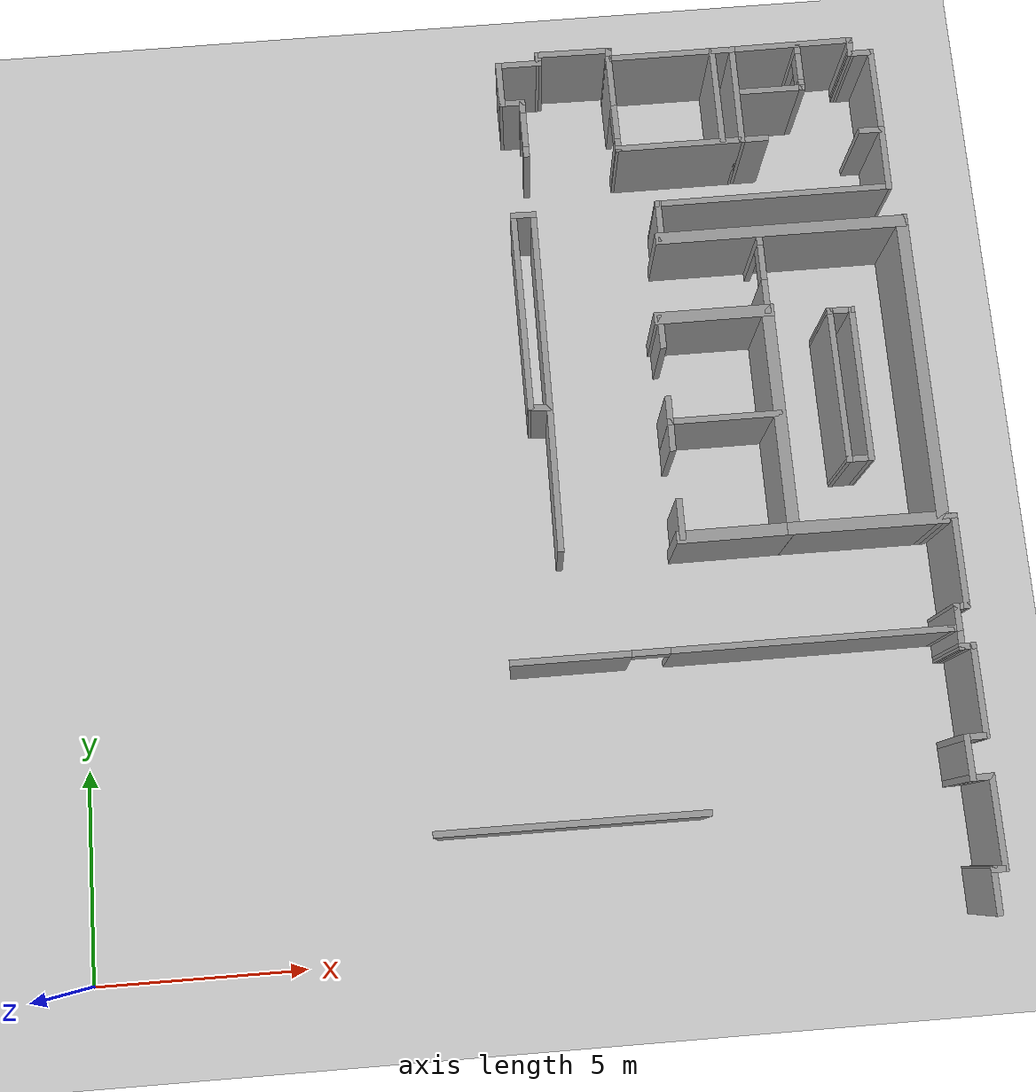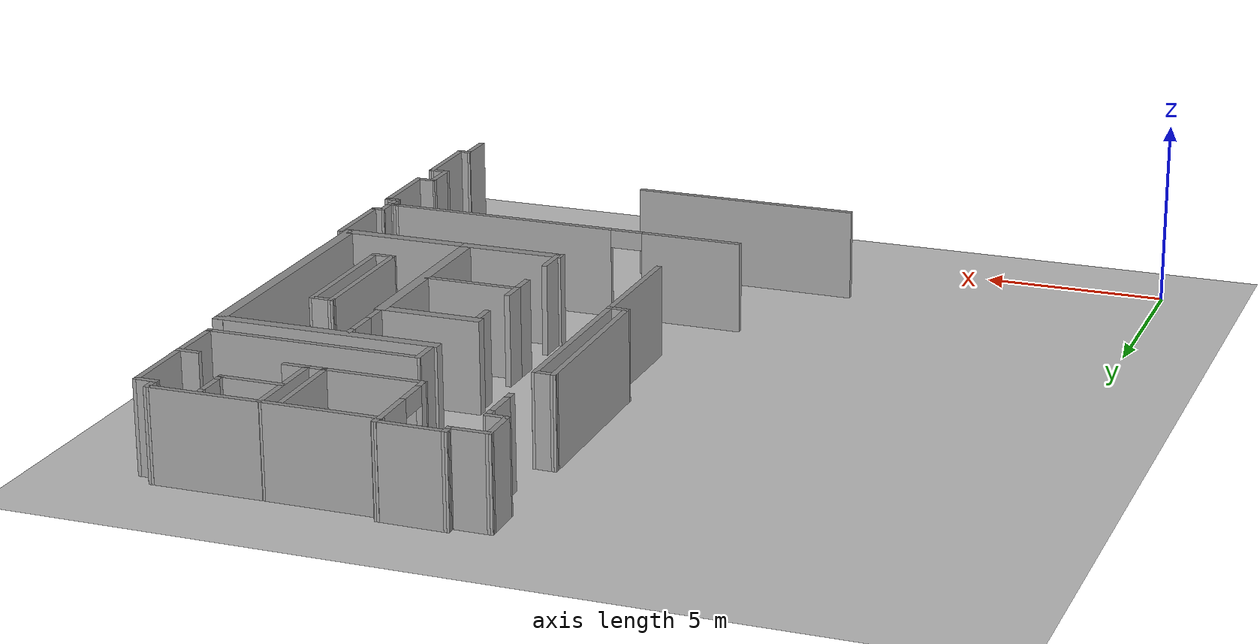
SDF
<sdf version="1.6">
 <world name="default">
  <model name="ground_plane">
   <static>1</static>
   <link name="link">
    <collision name="collision">
     <geometry><plane><normal>0 0 1</normal><size>100 100</size></plane></geometry>
     <surface>
      <contact><collide_bitmask>65535</collide_bitmask></contact>
      <friction><ode><mu>100</mu><mu2>50</mu2></ode></friction>
     </surface>
    </collision>
    <visual name="visual">
     <cast_shadows>0</cast_shadows>
     <geometry><plane><normal>0 0 1</normal><size>100 100</size></plane></geometry>
     <material>
      <script><uri>file://media/materials/scripts/gazebo.material</uri><name>Gazebo/Grey</name></script>
     </material>
    </visual>
   </link>
  </model>
  <model name="Myhal_5th_floor">
   <pose>-0.342666 0.4433 0 0 -0 0</pose>
   <link name="Wall_100">
    <collision name="Wall_100_Collision">
     <geometry><box><size>6.28685 0.15 2.5</size></box></geometry>
     <pose>0 0 1.25 0 -0 0</pose>
    </collision>
    <visual name="Wall_100_Visual">
     <pose>0 0 1.25 0 -0 0</pose>
     <geometry><box><size>6.28685 0.15 2.5</size></box></geometry>
     <material>
      <script><uri>file://media/materials/scripts/gazebo.material</uri><name>Gazebo/Grey</name></script>
      <ambient>1 1 1 1</ambient>
     </material>
     <meta><layer>0</layer></meta>
    </visual>
    <pose>11.7401 2.3432 0 0 -0 3.13947</pose>
   </link>
   <link name="Wall_118">
    <pose>15.7279 6.04725 0 0 -0 -0.000231</pose>
    <visual name="Wall_118_Visual_0">
     <pose>-3.72203 0 1.25 0 -0 0</pose>
     <geometry><box><size>2.81932 0.15 2.5</size></box></geometry>
     <material>
      <script><uri>file://media/materials/scripts/gazebo.material</uri><name>Gazebo/Grey</name></script>
      <ambient>1 1 1 1</ambient>
     </material>
     <meta><layer>0</layer></meta>
    </visual>
    <collision name="Wall_118_Collision_0">
     <geometry><box><size>2.81932 0.15 2.5</size></box></geometry>
     <pose>-3.72203 0 1.25 0 -0 0</pose>
    </collision>
    <visual name="Wall_118_Visual_1">
     <pose>1.85966 0 1.25 0 -0 0</pose>
     <geometry><box><size>6.54406 0.15 2.5</size></box></geometry>
     <material>
      <script><uri>file://media/materials/scripts/gazebo.material</uri><name>Gazebo/Grey</name></script>
      <ambient>1 1 1 1</ambient>
     </material>
     <meta><layer>0</layer></meta>
    </visual>
    <collision name="Wall_118_Collision_1">
     <geometry><box><size>6.54406 0.15 2.5</size></box></geometry>
     <pose>1.85966 0 1.25 0 -0 0</pose>
    </collision>
    <visual name="Wall_118_Visual_2">
     <pose>-1.86237 0 2.25 0 -0 0</pose>
     <geometry><box><size>0.9 0.15 0.5</size></box></geometry>
     <material>
      <script><uri>file://media/materials/scripts/gazebo.material</uri><name>Gazebo/Grey</name></script>
      <ambient>1 1 1 1</ambient>
     </material>
     <meta><layer>0</layer></meta>
    </visual>
    <collision name="Wall_118_Collision_2">
     <geometry><box><size>0.9 0.15 0.5</size></box></geometry>
     <pose>-1.86237 0 2.25 0 -0 0</pose>
    </collision>
   </link>
   <link name="Wall_164">
    <collision name="Wall_164_Collision">
     <geometry><box><size>0.354599 0.15 2.5</size></box></geometry>
     <pose>0 0 1.25 0 -0 0</pose>
    </collision>
    <visual name="Wall_164_Visual">
     <pose>0 0 1.25 0 -0 0</pose>
     <geometry><box><size>0.354599 0.15 2.5</size></box></geometry>
     <material>
      <script><uri>file://media/materials/scripts/gazebo.material</uri><name>Gazebo/Grey</name></script>
      <ambient>1 1 1 1</ambient>
     </material>
     <meta><layer>0</layer></meta>
    </visual>
    <pose>20.8869 6.04595 0 0 -0 -0.001337</pose>
   </link>
   <link name="Wall_165">
    <collision name="Wall_165_Collision">
     <geometry><box><size>0.585015 0.15 2.5</size></box></geometry>
     <pose>0 0 1.25 0 -0 0</pose>
    </collision>
    <visual name="Wall_165_Visual">
     <pose>0 0 1.25 0 -0 0</pose>
     <geometry><box><size>0.585015 0.15 2.5</size></box></geometry>
     <material>
      <script><uri>file://media/materials/scripts/gazebo.material</uri><name>Gazebo/Grey</name></script>
      <ambient>1 1 1 1</ambient>
     </material>
     <meta><layer>0</layer></meta>
    </visual>
    <pose>20.9842 5.82836 0 0 -0 -1.59405</pose>
   </link>
   <link name="Wall_166">
    <collision name="Wall_166_Collision">
     <geometry><box><size>0.413156 0.15 2.5</size></box></geometry>
     <pose>0 0 1.25 0 -0 0</pose>
    </collision>
    <visual name="Wall_166_Visual">
     <pose>0 0 1.25 0 -0 0</pose>
     <geometry><box><size>0.413156 0.15 2.5</size></box></geometry>
     <material>
      <script><uri>file://media/materials/scripts/gazebo.material</uri><name>Gazebo/Grey</name></script>
      <ambient>1 1 1 1</ambient>
     </material>
     <meta><layer>0</layer></meta>
    </visual>
    <pose>21.1106 5.61091 0 0 -0 0</pose>
   </link>
   <link name="Wall_167">
    <collision name="Wall_167_Collision">
     <geometry><box><size>2.20335 0.15 2.5</size></box></geometry>
     <pose>0 0 1.25 0 -0 0</pose>
    </collision>
    <visual name="Wall_167_Visual">
     <pose>0 0 1.25 0 -0 0</pose>
     <geometry><box><size>2.20335 0.15 2.5</size></box></geometry>
     <material>
      <script><uri>file://media/materials/scripts/gazebo.material</uri><name>Gazebo/Grey</name></script>
      <ambient>1 1 1 1</ambient>
     </material>
     <meta><layer>0</layer></meta>
    </visual>
    <pose>21.2471 4.58435 0 0 -0 -1.56587</pose>
   </link>
   <link name="Wall_168">
    <collision name="Wall_168_Collision">
     <geometry><box><size>0.600182 0.15 2.5</size></box></geometry>
     <pose>0 0 1.25 0 -0 0</pose>
    </collision>
    <visual name="Wall_168_Visual">
     <pose>0 0 1.25 0 -0 0</pose>
     <geometry><box><size>0.600182 0.15 2.5</size></box></geometry>
     <material>
      <script><uri>file://media/materials/scripts/gazebo.material</uri><name>Gazebo/Grey</name></script>
      <ambient>1 1 1 1</ambient>
     </material>
     <meta><layer>0</layer></meta>
    </visual>
    <pose>21.0271 3.55526 0 0 -0 -3.13036</pose>
   </link>
   <link name="Wall_170">
    <collision name="Wall_170_Collision">
     <geometry><box><size>1.06536 0.15 2.5</size></box></geometry>
     <pose>0 0 1.25 0 -0 0</pose>
    </collision>
    <visual name="Wall_170_Visual">
     <pose>0 0 1.25 0 -0 0</pose>
     <geometry><box><size>1.06536 0.15 2.5</size></box></geometry>
     <material>
      <script><uri>file://media/materials/scripts/gazebo.material</uri><name>Gazebo/Grey</name></script>
      <ambient>1 1 1 1</ambient>
     </material>
     <meta><layer>0</layer></meta>
    </visual>
    <pose>20.8072 3.09508 0 0 -0 -1.55975</pose>
   </link>
   <link name="Wall_171">
    <collision name="Wall_171_Collision">
     <geometry><box><size>0.579959 0.15 2.5</size></box></geometry>
     <pose>0 0 1.25 0 -0 0</pose>
    </collision>
    <visual name="Wall_171_Visual">
     <pose>0 0 1.25 0 -0 0</pose>
     <geometry><box><size>0.579959 0.15 2.5</size></box></geometry>
     <material>
      <script><uri>file://media/materials/scripts/gazebo.material</uri><name>Gazebo/Grey</name></script>
      <ambient>1 1 1 1</ambient>
     </material>
     <meta><layer>0</layer></meta>
    </visual>
    <pose>21.0271 2.63996 0 0 -0 0.011764</pose>
   </link>
   <link name="Wall_172">
    <collision name="Wall_172_Collision">
     <geometry><box><size>2.18295 0.15 2.5</size></box></geometry>
     <pose>0 0 1.25 0 -0 0</pose>
    </collision>
    <visual name="Wall_172_Visual">
     <pose>0 0 1.25 0 -0 0</pose>
     <geometry><box><size>2.18295 0.15 2.5</size></box></geometry>
     <material>
      <script><uri>file://media/materials/scripts/gazebo.material</uri><name>Gazebo/Grey</name></script>
      <ambient>1 1 1 1</ambient>
     </material>
     <meta><layer>0</layer></meta>
    </visual>
    <pose>21.2496 1.62604 0 0 -0 -1.56333</pose>
   </link>
   <link name="Wall_174">
    <collision name="Wall_174_Collision">
     <geometry><box><size>0.413679 0.15 2.5</size></box></geometry>
     <pose>0 0 1.25 0 -0 0</pose>
    </collision>
    <visual name="Wall_174_Visual">
     <pose>0 0 1.25 0 -0 0</pose>
     <geometry><box><size>0.413679 0.15 2.5</size></box></geometry>
     <material>
      <script><uri>file://media/materials/scripts/gazebo.material</uri><name>Gazebo/Grey</name></script>
      <ambient>1 1 1 1</ambient>
     </material>
     <meta><layer>0</layer></meta>
    </visual>
    <pose>21.1254 0.609425 0 0 -0 -3.14034</pose>
   </link>
   <link name="Wall_175">
    <collision name="Wall_175_Collision">
     <geometry><box><size>1.09026 0.15 2.5</size></box></geometry>
     <pose>0 0 1.25 0 -0 0</pose>
    </collision>
    <visual name="Wall_175_Visual">
     <pose>0 0 1.25 0 -0 0</pose>
     <geometry><box><size>1.09026 0.15 2.5</size></box></geometry>
     <material>
      <script><uri>file://media/materials/scripts/gazebo.material</uri><name>Gazebo/Grey</name></script>
      <ambient>1 1 1 1</ambient>
     </material>
     <meta><layer>0</layer></meta>
    </visual>
    <pose>20.9939 0.139129 0 0 -0 -1.57004</pose>
   </link>
   <link name="Wall_467">
    <collision name="Wall_467_Collision">
     <geometry><box><size>0.64431 0.15 2.5</size></box></geometry>
     <pose>0 0 1.25 0 -0 0</pose>
    </collision>
    <visual name="Wall_467_Visual">
     <pose>0 0 1.25 0 -0 0</pose>
     <geometry><box><size>0.64431 0.15 2.5</size></box></geometry>
     <material>
      <script><uri>file://media/materials/scripts/gazebo.material</uri><name>Gazebo/Grey</name></script>
      <ambient>1 1 1 1</ambient>
     </material>
     <meta><layer>0</layer></meta>
    </visual>
    <pose>20.989 6.29296 0 0 -0 1.57179</pose>
   </link>
   <link name="Wall_468">
    <collision name="Wall_468_Collision">
     <geometry><box><size>0.387305 0.15 2.5</size></box></geometry>
     <pose>0 0 1.25 0 -0 0</pose>
    </collision>
    <visual name="Wall_468_Visual">
     <pose>0 0 1.25 0 -0 0</pose>
     <geometry><box><size>0.387305 0.15 2.5</size></box></geometry>
     <material>
      <script><uri>file://media/materials/scripts/gazebo.material</uri><name>Gazebo/Grey</name></script>
      <ambient>1 1 1 1</ambient>
     </material>
     <meta><layer>0</layer></meta>
    </visual>
    <pose>21.1072 6.54563 0 0 -0 0.046478</pose>
   </link>
   <link name="Wall_469">
    <collision name="Wall_469_Collision">
     <geometry><box><size>2.27414 0.15 2.5</size></box></geometry>
     <pose>0 0 1.25 0 -0 0</pose>
    </collision>
    <visual name="Wall_469_Visual">
     <pose>0 0 1.25 0 -0 0</pose>
     <geometry><box><size>2.27414 0.15 2.5</size></box></geometry>
     <material>
      <script><uri>file://media/materials/scripts/gazebo.material</uri><name>Gazebo/Grey</name></script>
      <ambient>1 1 1 1</ambient>
     </material>
     <meta><layer>0</layer></meta>
    </visual>
    <pose>21.2258 7.61322 0 0 -0 1.57076</pose>
   </link>
   <link name="Wall_471">
    <collision name="Wall_471_Collision">
     <geometry><box><size>0.410825 0.15 2.5</size></box></geometry>
     <pose>0 0 1.25 0 -0 0</pose>
    </collision>
    <visual name="Wall_471_Visual">
     <pose>0 0 1.25 0 -0 0</pose>
     <geometry><box><size>0.410825 0.15 2.5</size></box></geometry>
     <material>
      <script><uri>file://media/materials/scripts/gazebo.material</uri><name>Gazebo/Grey</name></script>
      <ambient>1 1 1 1</ambient>
     </material>
     <meta><layer>0</layer></meta>
    </visual>
    <pose>21.0952 8.66979 0 0 -0 -3.09951</pose>
   </link>
   <link name="Wall_472">
    <collision name="Wall_472_Collision">
     <geometry><box><size>3.80902 0.3 2.5</size></box></geometry>
     <pose>0 0 1.25 0 -0 0</pose>
    </collision>
    <visual name="Wall_472_Visual">
     <pose>0 0 1.25 0 -0 0</pose>
     <geometry><box><size>3.80902 0.3 2.5</size></box></geometry>
     <material>
      <script><uri>file://media/materials/scripts/gazebo.material</uri><name>Gazebo/Grey</name></script>
      <ambient>1 1 1 1</ambient>
     </material>
     <meta><layer>0</layer></meta>
    </visual>
    <pose>19.2101 8.66979 0 0 -0 3.13846</pose>
   </link>
   <link name="Wall_474">
    <collision name="Wall_474_Collision">
     <geometry><box><size>7.74144 0.3 2.5</size></box></geometry>
     <pose>0 0 1.25 0 -0 0</pose>
    </collision>
    <visual name="Wall_474_Visual">
     <pose>0 0 1.25 0 -0 0</pose>
     <geometry><box><size>7.74144 0.3 2.5</size></box></geometry>
     <material>
      <script><uri>file://media/materials/scripts/gazebo.material</uri><name>Gazebo/Grey</name></script>
      <ambient>1 1 1 1</ambient>
     </material>
     <meta><layer>0</layer></meta>
    </visual>
    <pose>20.9646 12.385 0 0 -0 1.5708</pose>
   </link>
   <link name="Wall_475">
    <collision name="Wall_475_Collision">
     <geometry><box><size>6.18064 0.3 2.5</size></box></geometry>
     <pose>0 0 1.25 0 -0 0</pose>
    </collision>
    <visual name="Wall_475_Visual">
     <pose>0 0 1.25 0 -0 0</pose>
     <geometry><box><size>6.18064 0.3 2.5</size></box></geometry>
     <material>
      <script><uri>file://media/materials/scripts/gazebo.material</uri><name>Gazebo/Grey</name></script>
      <ambient>1 1 1 1</ambient>
     </material>
     <meta><layer>0</layer></meta>
    </visual>
    <pose>18.0243 16.098 0 0 -0 3.14143</pose>
   </link>
   <link name="Wall_477">
    <collision name="Wall_477_Collision">
     <geometry><box><size>1.05711 0.15 2.5</size></box></geometry>
     <pose>0 0 1.25 0 -0 0</pose>
    </collision>
    <visual name="Wall_477_Visual">
     <pose>0 0 1.25 0 -0 0</pose>
     <geometry><box><size>1.05711 0.15 2.5</size></box></geometry>
     <material>
      <script><uri>file://media/materials/scripts/gazebo.material</uri><name>Gazebo/Grey</name></script>
      <ambient>1 1 1 1</ambient>
     </material>
     <meta><layer>0</layer></meta>
    </visual>
    <pose>15.0852 16.552 0 0 -0 1.56811</pose>
   </link>
   <link name="Wall_478">
    <collision name="Wall_478_Collision">
     <geometry><box><size>5.83753 0.15 2.5</size></box></geometry>
     <pose>0 0 1.25 0 -0 0</pose>
    </collision>
    <visual name="Wall_478_Visual">
     <pose>0 0 1.25 0 -0 0</pose>
     <geometry><box><size>5.83753 0.15 2.5</size></box></geometry>
     <material>
      <script><uri>file://media/materials/scripts/gazebo.material</uri><name>Gazebo/Grey</name></script>
      <ambient>1 1 1 1</ambient>
     </material>
     <meta><layer>0</layer></meta>
    </visual>
    <pose>17.9302 17.0125 0 0 -0 0.002429</pose>
   </link>
   <link name="Wall_480">
    <collision name="Wall_480_Collision">
     <geometry><box><size>1.66302 0.15 2.5</size></box></geometry>
     <pose>0 0 1.25 0 -0 0</pose>
    </collision>
    <visual name="Wall_480_Visual">
     <pose>0 0 1.25 0 -0 0</pose>
     <geometry><box><size>1.66302 0.15 2.5</size></box></geometry>
     <material>
      <script><uri>file://media/materials/scripts/gazebo.material</uri><name>Gazebo/Grey</name></script>
      <ambient>1 1 1 1</ambient>
     </material>
     <meta><layer>0</layer></meta>
    </visual>
    <pose>20.7822 17.7758 0 0 -0 1.55993</pose>
   </link>
   <link name="Wall_481">
    <collision name="Wall_481_Collision">
     <geometry><box><size>0.643416 0.15 2.5</size></box></geometry>
     <pose>0 0 1.25 0 -0 0</pose>
    </collision>
    <visual name="Wall_481_Visual">
     <pose>0 0 1.25 0 -0 0</pose>
     <geometry><box><size>0.643416 0.15 2.5</size></box></geometry>
     <material>
      <script><uri>file://media/materials/scripts/gazebo.material</uri><name>Gazebo/Grey</name></script>
      <ambient>1 1 1 1</ambient>
     </material>
     <meta><layer>0</layer></meta>
    </visual>
    <pose>20.5437 18.5364 0 0 -0 3.12493</pose>
   </link>
   <link name="Wall_483">
    <collision name="Wall_483_Collision">
     <geometry><box><size>2.25496 0.15 2.5</size></box></geometry>
     <pose>0 0 1.25 0 -0 0</pose>
    </collision>
    <visual name="Wall_483_Visual">
     <pose>0 0 1.25 0 -0 0</pose>
     <geometry><box><size>2.25496 0.15 2.5</size></box></geometry>
     <material>
      <script><uri>file://media/materials/scripts/gazebo.material</uri><name>Gazebo/Grey</name></script>
      <ambient>1 1 1 1</ambient>
     </material>
     <meta><layer>0</layer></meta>
    </visual>
    <pose>20.7863 19.5848 0 0 -0 1.5747</pose>
   </link>
   <link name="Wall_484">
    <collision name="Wall_484_Collision">
     <geometry><box><size>0.65157 0.15 2.5</size></box></geometry>
     <pose>0 0 1.25 0 -0 0</pose>
    </collision>
    <visual name="Wall_484_Visual">
     <pose>0 0 1.25 0 -0 0</pose>
     <geometry><box><size>0.65157 0.15 2.5</size></box></geometry>
     <material>
      <script><uri>file://media/materials/scripts/gazebo.material</uri><name>Gazebo/Grey</name></script>
      <ambient>1 1 1 1</ambient>
     </material>
     <meta><layer>0</layer></meta>
    </visual>
    <pose>20.5314 20.6372 0 0 -0 3.14159</pose>
   </link>
   <link name="Wall_485">
    <collision name="Wall_485_Collision">
     <geometry><box><size>0.520011 0.15 2.5</size></box></geometry>
     <pose>0 0 1.25 0 -0 0</pose>
    </collision>
    <visual name="Wall_485_Visual">
     <pose>0 0 1.25 0 -0 0</pose>
     <geometry><box><size>0.520011 0.15 2.5</size></box></geometry>
     <material>
      <script><uri>file://media/materials/scripts/gazebo.material</uri><name>Gazebo/Grey</name></script>
      <ambient>1 1 1 1</ambient>
     </material>
     <meta><layer>0</layer></meta>
    </visual>
    <pose>20.2847 20.8222 0 0 -0 1.54858</pose>
   </link>
   <link name="Wall_486">
    <collision name="Wall_486_Collision">
     <geometry><box><size>3.11037 0.15 2.5</size></box></geometry>
     <pose>0 0 1.25 0 -0 0</pose>
    </collision>
    <visual name="Wall_486_Visual">
     <pose>0 0 1.25 0 -0 0</pose>
     <geometry><box><size>3.11037 0.15 2.5</size></box></geometry>
     <material>
      <script><uri>file://media/materials/scripts/gazebo.material</uri><name>Gazebo/Grey</name></script>
      <ambient>1 1 1 1</ambient>
     </material>
     <meta><layer>0</layer></meta>
    </visual>
    <pose>18.8088 20.9949 0 0 -0 -3.13326</pose>
   </link>
   <link name="Wall_487">
    <collision name="Wall_487_Collision">
     <geometry><box><size>2.59892 0.15 2.5</size></box></geometry>
     <pose>0 0 1.25 0 -0 0</pose>
    </collision>
    <visual name="Wall_487_Visual">
     <pose>0 0 1.25 0 -0 0</pose>
     <geometry><box><size>2.59892 0.15 2.5</size></box></geometry>
     <material>
      <script><uri>file://media/materials/scripts/gazebo.material</uri><name>Gazebo/Grey</name></script>
      <ambient>1 1 1 1</ambient>
     </material>
     <meta><layer>0</layer></meta>
    </visual>
    <pose>17.323 19.7581 0 0 -0 -1.57553</pose>
   </link>
   <link name="Wall_488">
    <collision name="Wall_488_Collision">
     <geometry><box><size>0.736689 0.15 2.5</size></box></geometry>
     <pose>0 0 1.25 0 -0 0</pose>
    </collision>
    <visual name="Wall_488_Visual">
     <pose>0 0 1.25 0 -0 0</pose>
     <geometry><box><size>0.736689 0.15 2.5</size></box></geometry>
     <material>
      <script><uri>file://media/materials/scripts/gazebo.material</uri><name>Gazebo/Grey</name></script>
      <ambient>1 1 1 1</ambient>
     </material>
     <meta><layer>0</layer></meta>
    </visual>
    <pose>17.6103 18.5337 0 0 -0 0</pose>
   </link>
   <link name="Wall_490">
    <collision name="Wall_490_Collision">
     <geometry><box><size>3.25 0.15 2.5</size></box></geometry>
     <pose>0 0 1.25 0 -0 0</pose>
    </collision>
    <visual name="Wall_490_Visual">
     <pose>0 0 1.25 0 -0 0</pose>
     <geometry><box><size>3.25 0.15 2.5</size></box></geometry>
     <material>
      <script><uri>file://media/materials/scripts/gazebo.material</uri><name>Gazebo/Grey</name></script>
      <ambient>1 1 1 1</ambient>
     </material>
     <meta><layer>0</layer></meta>
    </visual>
    <pose>15.7788 20.9826 0 0 -0 3.14159</pose>
   </link>
   <link name="Wall_491">
    <pose>14.2429 19.7581 0 0 -0 -1.55928</pose>
    <visual name="Wall_491_Visual_0">
     <pose>-0.620955 0 1.25 0 -0 0</pose>
     <geometry><box><size>1.35698 0.15 2.5</size></box></geometry>
     <material>
      <script><uri>file://media/materials/scripts/gazebo.material</uri><name>Gazebo/Grey</name></script>
      <ambient>1 1 1 1</ambient>
     </material>
     <meta><layer>0</layer></meta>
    </visual>
    <collision name="Wall_491_Collision_0">
     <geometry><box><size>1.35698 0.15 2.5</size></box></geometry>
     <pose>-0.620955 0 1.25 0 -0 0</pose>
    </collision>
    <visual name="Wall_491_Visual_1">
     <pose>1.12849 0 1.25 0 -0 0</pose>
     <geometry><box><size>0.34191 0.15 2.5</size></box></geometry>
     <material>
      <script><uri>file://media/materials/scripts/gazebo.material</uri><name>Gazebo/Grey</name></script>
      <ambient>1 1 1 1</ambient>
     </material>
     <meta><layer>0</layer></meta>
    </visual>
    <collision name="Wall_491_Collision_1">
     <geometry><box><size>0.34191 0.15 2.5</size></box></geometry>
     <pose>1.12849 0 1.25 0 -0 0</pose>
    </collision>
    <visual name="Wall_491_Visual_2">
     <pose>0.507535 0 2.25 0 -0 0</pose>
     <geometry><box><size>0.9 0.15 0.5</size></box></geometry>
     <material>
      <script><uri>file://media/materials/scripts/gazebo.material</uri><name>Gazebo/Grey</name></script>
      <ambient>1 1 1 1</ambient>
     </material>
     <meta><layer>0</layer></meta>
    </visual>
    <collision name="Wall_491_Collision_2">
     <geometry><box><size>0.9 0.15 0.5</size></box></geometry>
     <pose>0.507535 0 2.25 0 -0 0</pose>
    </collision>
   </link>
   <link name="Wall_492">
    <collision name="Wall_492_Collision">
     <geometry><box><size>3.21018 0.15 2.5</size></box></geometry>
     <pose>0 0 1.25 0 -0 0</pose>
    </collision>
    <visual name="Wall_492_Visual">
     <pose>0 0 1.25 0 -0 0</pose>
     <geometry><box><size>3.21018 0.15 2.5</size></box></geometry>
     <material>
      <script><uri>file://media/materials/scripts/gazebo.material</uri><name>Gazebo/Grey</name></script>
      <ambient>1 1 1 1</ambient>
     </material>
     <meta><layer>0</layer></meta>
    </visual>
    <pose>15.7871 18.5337 0 0 -0 0</pose>
   </link>
   <link name="Wall_494">
    <collision name="Wall_494_Collision">
     <geometry><box><size>2.5381 0.15 2.5</size></box></geometry>
     <pose>0 0 1.25 0 -0 0</pose>
    </collision>
    <visual name="Wall_494_Visual">
     <pose>0 0 1.25 0 -0 0</pose>
     <geometry><box><size>2.5381 0.15 2.5</size></box></geometry>
     <material>
      <script><uri>file://media/materials/scripts/gazebo.material</uri><name>Gazebo/Grey</name></script>
      <ambient>1 1 1 1</ambient>
     </material>
     <meta><layer>0</layer></meta>
    </visual>
    <pose>16.8345 19.7778 0 0 -0 -1.5678</pose>
   </link>
   <link name="Wall_496">
    <collision name="Wall_496_Collision">
     <geometry><box><size>2.90201 0.3 2.5</size></box></geometry>
     <pose>0 0 1.25 0 -0 0</pose>
    </collision>
    <visual name="Wall_496_Visual">
     <pose>0 0 1.25 0 -0 0</pose>
     <geometry><box><size>2.90201 0.3 2.5</size></box></geometry>
     <material>
      <script><uri>file://media/materials/scripts/gazebo.material</uri><name>Gazebo/Grey</name></script>
      <ambient>1 1 1 1</ambient>
     </material>
     <meta><layer>0</layer></meta>
    </visual>
    <pose>16.1546 8.67179 0 0 -0 -3.1389</pose>
   </link>
   <link name="Wall_498">
    <collision name="Wall_498_Collision">
     <geometry><box><size>1 0.15 2.5</size></box></geometry>
     <pose>0 0 1.25 0 -0 0</pose>
    </collision>
    <visual name="Wall_498_Visual">
     <pose>0 0 1.25 0 -0 0</pose>
     <geometry><box><size>1 0.15 2.5</size></box></geometry>
     <material>
      <script><uri>file://media/materials/scripts/gazebo.material</uri><name>Gazebo/Grey</name></script>
      <ambient>1 1 1 1</ambient>
     </material>
     <meta><layer>0</layer></meta>
    </visual>
    <pose>14.8536 9.09329 0 0 -0 1.5708</pose>
   </link>
   <link name="Wall_500">
    <collision name="Wall_500_Collision">
     <geometry><box><size>5.68783 0.3 2.5</size></box></geometry>
     <pose>0 0 1.25 0 -0 0</pose>
    </collision>
    <visual name="Wall_500_Visual">
     <pose>0 0 1.25 0 -0 0</pose>
     <geometry><box><size>5.68783 0.3 2.5</size></box></geometry>
     <material>
      <script><uri>file://media/materials/scripts/gazebo.material</uri><name>Gazebo/Grey</name></script>
      <ambient>1 1 1 1</ambient>
     </material>
     <meta><layer>0</layer></meta>
    </visual>
    <pose>17.4509 11.3692 0 0 -0 1.57255</pose>
   </link>
   <link name="Wall_502">
    <collision name="Wall_502_Collision">
     <geometry><box><size>2.9 0.3 2.5</size></box></geometry>
     <pose>0 0 1.25 0 -0 0</pose>
    </collision>
    <visual name="Wall_502_Visual">
     <pose>0 0 1.25 0 -0 0</pose>
     <geometry><box><size>2.9 0.3 2.5</size></box></geometry>
     <material>
      <script><uri>file://media/materials/scripts/gazebo.material</uri><name>Gazebo/Grey</name></script>
      <ambient>1 1 1 1</ambient>
     </material>
     <meta><layer>0</layer></meta>
    </visual>
    <pose>16.1556 14.0631 0 0 -0 3.14159</pose>
   </link>
   <link name="Wall_504">
    <collision name="Wall_504_Collision">
     <geometry><box><size>0.835611 0.15 2.5</size></box></geometry>
     <pose>0 0 1.25 0 -0 0</pose>
    </collision>
    <visual name="Wall_504_Visual">
     <pose>0 0 1.25 0 -0 0</pose>
     <geometry><box><size>0.835611 0.15 2.5</size></box></geometry>
     <material>
      <script><uri>file://media/materials/scripts/gazebo.material</uri><name>Gazebo/Grey</name></script>
      <ambient>1 1 1 1</ambient>
     </material>
     <meta><layer>0</layer></meta>
    </visual>
    <pose>14.8576 13.7203 0 0 -0 -1.56479</pose>
   </link>
   <link name="Wall_506">
    <collision name="Wall_506_Collision">
     <geometry><box><size>0.706724 0.15 2.5</size></box></geometry>
     <pose>0 0 1.25 0 -0 0</pose>
    </collision>
    <visual name="Wall_506_Visual">
     <pose>0 0 1.25 0 -0 0</pose>
     <geometry><box><size>0.706724 0.15 2.5</size></box></geometry>
     <material>
      <script><uri>file://media/materials/scripts/gazebo.material</uri><name>Gazebo/Grey</name></script>
      <ambient>1 1 1 1</ambient>
     </material>
     <meta><layer>0</layer></meta>
    </visual>
    <pose>14.842 11.7548 0 0 -0 -1.57642</pose>
   </link>
   <link name="Wall_507">
    <collision name="Wall_507_Collision">
     <geometry><box><size>0.800421 0.15 2.5</size></box></geometry>
     <pose>0 0 1.25 0 -0 0</pose>
    </collision>
    <visual name="Wall_507_Visual">
     <pose>0 0 1.25 0 -0 0</pose>
     <geometry><box><size>0.800421 0.15 2.5</size></box></geometry>
     <material>
      <script><uri>file://media/materials/scripts/gazebo.material</uri><name>Gazebo/Grey</name></script>
      <ambient>1 1 1 1</ambient>
     </material>
     <meta><layer>0</layer></meta>
    </visual>
    <pose>14.8406 11.1512 0 0 -0 -1.5866</pose>
   </link>
   <link name="Wall_509">
    <collision name="Wall_509_Collision">
     <geometry><box><size>2.73932 0.15 2.5</size></box></geometry>
     <pose>0 0 1.25 0 -0 0</pose>
    </collision>
    <visual name="Wall_509_Visual">
     <pose>0 0 1.25 0 -0 0</pose>
     <geometry><box><size>2.73932 0.15 2.5</size></box></geometry>
     <material>
      <script><uri>file://media/materials/scripts/gazebo.material</uri><name>Gazebo/Grey</name></script>
      <ambient>1 1 1 1</ambient>
     </material>
     <meta><layer>0</layer></meta>
    </visual>
    <pose>16.1404 11.4764 0 0 -0 0</pose>
   </link>
   <link name="Wall_511">
    <collision name="Wall_511_Collision">
     <geometry><box><size>3.84753 0.15 2.5</size></box></geometry>
     <pose>0 0 1.25 0 -0 0</pose>
    </collision>
    <visual name="Wall_511_Visual">
     <pose>0 0 1.25 0 -0 0</pose>
     <geometry><box><size>3.84753 0.15 2.5</size></box></geometry>
     <material>
      <script><uri>file://media/materials/scripts/gazebo.material</uri><name>Gazebo/Grey</name></script>
      <ambient>1 1 1 1</ambient>
     </material>
     <meta><layer>0</layer></meta>
    </visual>
    <pose>18.9484 12.0769 0 0 -0 -1.56568</pose>
   </link>
   <link name="Wall_512">
    <collision name="Wall_512_Collision">
     <geometry><box><size>0.670156 0.15 2.5</size></box></geometry>
     <pose>0 0 1.25 0 -0 0</pose>
    </collision>
    <visual name="Wall_512_Visual">
     <pose>0 0 1.25 0 -0 0</pose>
     <geometry><box><size>0.670156 0.15 2.5</size></box></geometry>
     <material>
      <script><uri>file://media/materials/scripts/gazebo.material</uri><name>Gazebo/Grey</name></script>
      <ambient>1 1 1 1</ambient>
     </material>
     <meta><layer>0</layer></meta>
    </visual>
    <pose>19.2179 10.2283 0 0 -0 0</pose>
   </link>
   <link name="Wall_513">
    <collision name="Wall_513_Collision">
     <geometry><box><size>3.83778 0.15 2.5</size></box></geometry>
     <pose>0 0 1.25 0 -0 0</pose>
    </collision>
    <visual name="Wall_513_Visual">
     <pose>0 0 1.25 0 -0 0</pose>
     <geometry><box><size>3.83778 0.15 2.5</size></box></geometry>
     <material>
      <script><uri>file://media/materials/scripts/gazebo.material</uri><name>Gazebo/Grey</name></script>
      <ambient>1 1 1 1</ambient>
     </material>
     <meta><layer>0</layer></meta>
    </visual>
    <pose>19.4732 12.0721 0 0 -0 1.57336</pose>
   </link>
   <link name="Wall_514">
    <collision name="Wall_514_Collision">
     <geometry><box><size>0.679864 0.15 2.5</size></box></geometry>
     <pose>0 0 1.25 0 -0 0</pose>
    </collision>
    <visual name="Wall_514_Visual">
     <pose>0 0 1.25 0 -0 0</pose>
     <geometry><box><size>0.679864 0.15 2.5</size></box></geometry>
     <material>
      <script><uri>file://media/materials/scripts/gazebo.material</uri><name>Gazebo/Grey</name></script>
      <ambient>1 1 1 1</ambient>
     </material>
     <meta><layer>0</layer></meta>
    </visual>
    <pose>19.2037 13.9208 0 0 -0 3.12374</pose>
   </link>
   <link name="Wall_516">
    <pose>17.4573 15.093 0 0 -0 -1.57245</pose>
    <visual name="Wall_516_Visual_0">
     <pose>-0.877014 0 1.25 0 -0 0</pose>
     <geometry><box><size>0.455838 0.15 2.5</size></box></geometry>
     <material>
      <script><uri>file://media/materials/scripts/gazebo.material</uri><name>Gazebo/Grey</name></script>
      <ambient>1 1 1 1</ambient>
     </material>
     <meta><layer>0</layer></meta>
    </visual>
    <collision name="Wall_516_Collision_0">
     <geometry><box><size>0.455838 0.15 2.5</size></box></geometry>
     <pose>-0.877014 0 1.25 0 -0 0</pose>
    </collision>
    <visual name="Wall_516_Visual_1">
     <pose>0.677919 0 1.25 0 -0 0</pose>
     <geometry><box><size>0.854028 0.15 2.5</size></box></geometry>
     <material>
      <script><uri>file://media/materials/scripts/gazebo.material</uri><name>Gazebo/Grey</name></script>
      <ambient>1 1 1 1</ambient>
     </material>
     <meta><layer>0</layer></meta>
    </visual>
    <collision name="Wall_516_Collision_1">
     <geometry><box><size>0.854028 0.15 2.5</size></box></geometry>
     <pose>0.677919 0 1.25 0 -0 0</pose>
    </collision>
    <visual name="Wall_516_Visual_2">
     <pose>-0.199095 0 2.25 0 -0 0</pose>
     <geometry><box><size>0.9 0.15 0.5</size></box></geometry>
     <material>
      <script><uri>file://media/materials/scripts/gazebo.material</uri><name>Gazebo/Grey</name></script>
      <ambient>1 1 1 1</ambient>
     </material>
     <meta><layer>0</layer></meta>
    </visual>
    <collision name="Wall_516_Collision_2">
     <geometry><box><size>0.9 0.15 0.5</size></box></geometry>
     <pose>-0.199095 0 2.25 0 -0 0</pose>
    </collision>
   </link>
   <link name="Wall_520">
    <collision name="Wall_520_Collision">
     <geometry><box><size>0.365906 0.15 2.5</size></box></geometry>
     <pose>0 0 1.25 0 -0 0</pose>
    </collision>
    <visual name="Wall_520_Visual">
     <pose>0 0 1.25 0 -0 0</pose>
     <geometry><box><size>0.365906 0.15 2.5</size></box></geometry>
     <material>
      <script><uri>file://media/materials/scripts/gazebo.material</uri><name>Gazebo/Grey</name></script>
      <ambient>1 1 1 1</ambient>
     </material>
     <meta><layer>0</layer></meta>
    </visual>
    <pose>14.2412 21.0898 0 0 -0 1.45493</pose>
   </link>
   <link name="Wall_521">
    <collision name="Wall_521_Collision">
     <geometry><box><size>1.91897 0.15 2.5</size></box></geometry>
     <pose>0 0 1.25 0 -0 0</pose>
    </collision>
    <visual name="Wall_521_Visual">
     <pose>0 0 1.25 0 -0 0</pose>
     <geometry><box><size>1.91897 0.15 2.5</size></box></geometry>
     <material>
      <script><uri>file://media/materials/scripts/gazebo.material</uri><name>Gazebo/Grey</name></script>
      <ambient>1 1 1 1</ambient>
     </material>
     <meta><layer>0</layer></meta>
    </visual>
    <pose>13.3585 21.206 0 0 -0 3.13143</pose>
   </link>
   <link name="Wall_525">
    <collision name="Wall_525_Collision">
     <geometry><box><size>0.369342 0.15 2.5</size></box></geometry>
     <pose>0 0 1.25 0 -0 0</pose>
    </collision>
    <visual name="Wall_525_Visual">
     <pose>0 0 1.25 0 -0 0</pose>
     <geometry><box><size>0.369342 0.15 2.5</size></box></geometry>
     <material>
      <script><uri>file://media/materials/scripts/gazebo.material</uri><name>Gazebo/Grey</name></script>
      <ambient>1 1 1 1</ambient>
     </material>
     <meta><layer>0</layer></meta>
    </visual>
    <pose>12.4759 21.1054 0 0 -0 -1.5544</pose>
   </link>
   <link name="Wall_526">
    <collision name="Wall_526_Collision">
     <geometry><box><size>1.15308 0.15 2.5</size></box></geometry>
     <pose>0 0 1.25 0 -0 0</pose>
    </collision>
    <visual name="Wall_526_Visual">
     <pose>0 0 1.25 0 -0 0</pose>
     <geometry><box><size>1.15308 0.15 2.5</size></box></geometry>
     <material>
      <script><uri>file://media/materials/scripts/gazebo.material</uri><name>Gazebo/Grey</name></script>
      <ambient>1 1 1 1</ambient>
     </material>
     <meta><layer>0</layer></meta>
    </visual>
    <pose>11.9761 20.9957 0 0 -0 3.14159</pose>
   </link>
   <link name="Wall_527">
    <collision name="Wall_527_Collision">
     <geometry><box><size>1.1819 0.15 2.5</size></box></geometry>
     <pose>0 0 1.25 0 -0 0</pose>
    </collision>
    <visual name="Wall_527_Visual">
     <pose>0 0 1.25 0 -0 0</pose>
     <geometry><box><size>1.1819 0.15 2.5</size></box></geometry>
     <material>
      <script><uri>file://media/materials/scripts/gazebo.material</uri><name>Gazebo/Grey</name></script>
      <ambient>1 1 1 1</ambient>
     </material>
     <meta><layer>0</layer></meta>
    </visual>
    <pose>11.48 20.4798 0 0 -0 -1.56034</pose>
   </link>
   <link name="Wall_528">
    <collision name="Wall_528_Collision">
     <geometry><box><size>0.646162 0.15 2.5</size></box></geometry>
     <pose>0 0 1.25 0 -0 0</pose>
    </collision>
    <visual name="Wall_528_Visual">
     <pose>0 0 1.25 0 -0 0</pose>
     <geometry><box><size>0.646162 0.15 2.5</size></box></geometry>
     <material>
      <script><uri>file://media/materials/scripts/gazebo.material</uri><name>Gazebo/Grey</name></script>
      <ambient>1 1 1 1</ambient>
     </material>
     <meta><layer>0</layer></meta>
    </visual>
    <pose>11.7334 19.9621 0 0 -0 -0.007246</pose>
   </link>
   <link name="Wall_529">
    <pose>11.9815 19.2661 0 0 -0 -1.5708</pose>
    <visual name="Wall_529_Visual_0">
     <pose>-0.587586 0 1.25 0 -0 0</pose>
     <geometry><box><size>0.363104 0.15 2.5</size></box></geometry>
     <material>
      <script><uri>file://media/materials/scripts/gazebo.material</uri><name>Gazebo/Grey</name></script>
      <ambient>1 1 1 1</ambient>
     </material>
     <meta><layer>0</layer></meta>
    </visual>
    <collision name="Wall_529_Collision_0">
     <geometry><box><size>0.363104 0.15 2.5</size></box></geometry>
     <pose>-0.587586 0 1.25 0 -0 0</pose>
    </collision>
    <visual name="Wall_529_Visual_1">
     <pose>0.631552 0 1.25 0 -0 0</pose>
     <geometry><box><size>0.275172 0.15 2.5</size></box></geometry>
     <material>
      <script><uri>file://media/materials/scripts/gazebo.material</uri><name>Gazebo/Grey</name></script>
      <ambient>1 1 1 1</ambient>
     </material>
     <meta><layer>0</layer></meta>
    </visual>
    <collision name="Wall_529_Collision_1">
     <geometry><box><size>0.275172 0.15 2.5</size></box></geometry>
     <pose>0.631552 0 1.25 0 -0 0</pose>
    </collision>
    <visual name="Wall_529_Visual_2">
     <pose>0.043966 0 2.25 0 -0 0</pose>
     <geometry><box><size>0.9 0.15 0.5</size></box></geometry>
     <material>
      <script><uri>file://media/materials/scripts/gazebo.material</uri><name>Gazebo/Grey</name></script>
      <ambient>1 1 1 1</ambient>
     </material>
     <meta><layer>0</layer></meta>
    </visual>
    <collision name="Wall_529_Collision_2">
     <geometry><box><size>0.9 0.15 0.5</size></box></geometry>
     <pose>0.043966 0 2.25 0 -0 0</pose>
    </collision>
   </link>
   <link name="Wall_547">
    <collision name="Wall_547_Collision">
     <geometry><box><size>5.04844 0.15 2.5</size></box></geometry>
     <pose>0 0 1.25 0 -0 0</pose>
    </collision>
    <visual name="Wall_547_Visual">
     <pose>0 0 1.25 0 -0 0</pose>
     <geometry><box><size>5.04844 0.15 2.5</size></box></geometry>
     <material>
      <script><uri>file://media/materials/scripts/gazebo.material</uri><name>Gazebo/Grey</name></script>
      <ambient>1 1 1 1</ambient>
     </material>
     <meta><layer>0</layer></meta>
    </visual>
    <pose>11.555 14.5282 0 0 -0 1.57759</pose>
   </link>
   <link name="Wall_550">
    <collision name="Wall_550_Collision">
     <geometry><box><size>0.632406 0.15 2.5</size></box></geometry>
     <pose>0 0 1.25 0 -0 0</pose>
    </collision>
    <visual name="Wall_550_Visual">
     <pose>0 0 1.25 0 -0 0</pose>
     <geometry><box><size>0.632406 0.15 2.5</size></box></geometry>
     <material>
      <script><uri>file://media/materials/scripts/gazebo.material</uri><name>Gazebo/Grey</name></script>
      <ambient>1 1 1 1</ambient>
     </material>
     <meta><layer>0</layer></meta>
    </visual>
    <pose>11.7795 16.9732 0 0 -0 -0.01724</pose>
   </link>
   <link name="Wall_551">
    <collision name="Wall_551_Collision">
     <geometry><box><size>5.06482 0.15 2.5</size></box></geometry>
     <pose>0 0 1.25 0 -0 0</pose>
    </collision>
    <visual name="Wall_551_Visual">
     <pose>0 0 1.25 0 -0 0</pose>
     <geometry><box><size>5.06482 0.15 2.5</size></box></geometry>
     <material>
      <script><uri>file://media/materials/scripts/gazebo.material</uri><name>Gazebo/Grey</name></script>
      <ambient>1 1 1 1</ambient>
     </material>
     <meta><layer>0</layer></meta>
    </visual>
    <pose>12.0207 14.5116 0 0 -0 -1.5708</pose>
   </link>
   <link name="Wall_552">
    <collision name="Wall_552_Collision">
     <geometry><box><size>0.599378 0.15 2.5</size></box></geometry>
     <pose>0 0 1.25 0 -0 0</pose>
    </collision>
    <visual name="Wall_552_Visual">
     <pose>0 0 1.25 0 -0 0</pose>
     <geometry><box><size>0.599378 0.15 2.5</size></box></geometry>
     <material>
      <script><uri>file://media/materials/scripts/gazebo.material</uri><name>Gazebo/Grey</name></script>
      <ambient>1 1 1 1</ambient>
     </material>
     <meta><layer>0</layer></meta>
    </visual>
    <pose>11.7961 12.0667 0 0 -0 3.08609</pose>
   </link>
   <link name="Wall_562">
    <collision name="Wall_562_Collision">
     <geometry><box><size>1.75 0.15 2.5</size></box></geometry>
     <pose>0 0 1.25 0 -0 0</pose>
    </collision>
    <visual name="Wall_562_Visual">
     <pose>0 0 1.25 0 -0 0</pose>
     <geometry><box><size>1.75 0.15 2.5</size></box></geometry>
     <material>
      <script><uri>file://media/materials/scripts/gazebo.material</uri><name>Gazebo/Grey</name></script>
      <ambient>1 1 1 1</ambient>
     </material>
     <meta><layer>0</layer></meta>
    </visual>
    <pose>18.1614 19.8177 0 0 -0 0</pose>
   </link>
   <link name="Wall_565">
    <pose>18.9614 20.3677 0 0 -0 1.5708</pose>
    <visual name="Wall_565_Visual_0">
     <pose>-0.480799 0 1.25 0 -0 0</pose>
     <geometry><box><size>0.288403 0.15 2.5</size></box></geometry>
     <material>
      <script><uri>file://media/materials/scripts/gazebo.material</uri><name>Gazebo/Grey</name></script>
      <ambient>1 1 1 1</ambient>
     </material>
     <meta><layer>0</layer></meta>
    </visual>
    <collision name="Wall_565_Collision_0">
     <geometry><box><size>0.288403 0.15 2.5</size></box></geometry>
     <pose>-0.480799 0 1.25 0 -0 0</pose>
    </collision>
    <visual name="Wall_565_Visual_1">
     <pose>0.503023 0 1.25 0 -0 0</pose>
     <geometry><box><size>0.243954 0.15 2.5</size></box></geometry>
     <material>
      <script><uri>file://media/materials/scripts/gazebo.material</uri><name>Gazebo/Grey</name></script>
      <ambient>1 1 1 1</ambient>
     </material>
     <meta><layer>0</layer></meta>
    </visual>
    <collision name="Wall_565_Collision_1">
     <geometry><box><size>0.243954 0.15 2.5</size></box></geometry>
     <pose>0.503023 0 1.25 0 -0 0</pose>
    </collision>
    <visual name="Wall_565_Visual_2">
     <pose>0.022224 0 2.25 0 -0 0</pose>
     <geometry><box><size>0.717643 0.15 0.5</size></box></geometry>
     <material>
      <script><uri>file://media/materials/scripts/gazebo.material</uri><name>Gazebo/Grey</name></script>
      <ambient>1 1 1 1</ambient>
     </material>
     <meta><layer>0</layer></meta>
    </visual>
    <collision name="Wall_565_Collision_2">
     <geometry><box><size>0.717643 0.15 0.5</size></box></geometry>
     <pose>0.022224 0 2.25 0 -0 0</pose>
    </collision>
   </link>
   <link name="Wall_573">
    <collision name="Wall_573_Collision">
     <geometry><box><size>3.57776 0.15 2.5</size></box></geometry>
     <pose>0 0 1.25 0 -0 0</pose>
    </collision>
    <visual name="Wall_573_Visual">
     <pose>0 0 1.25 0 -0 0</pose>
     <geometry><box><size>3.57776 0.15 2.5</size></box></geometry>
     <material>
      <script><uri>file://media/materials/scripts/gazebo.material</uri><name>Gazebo/Grey</name></script>
      <ambient>1 1 1 1</ambient>
     </material>
     <meta><layer>0</layer></meta>
    </visual>
    <pose>12.0087 10.3403 0 0 -0 1.56381</pose>
   </link>
   <static>1</static>
  </model>
 </world>
</sdf>
